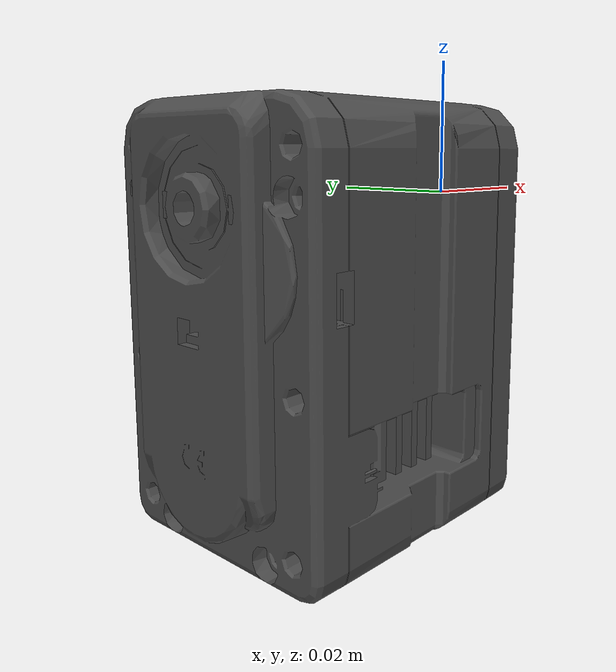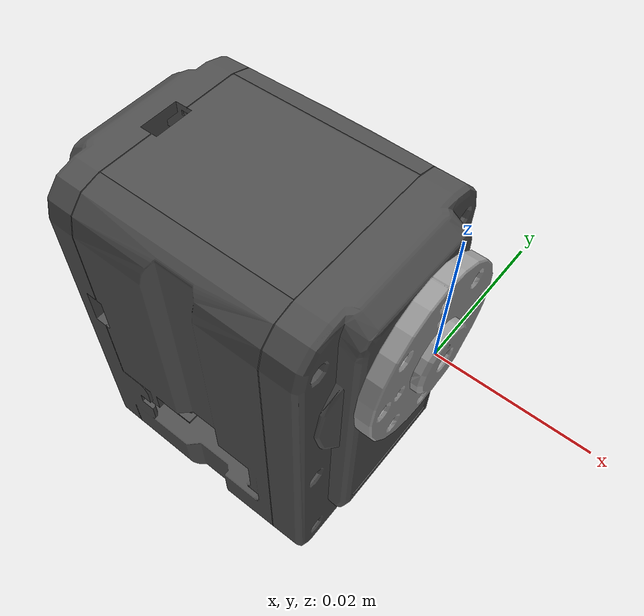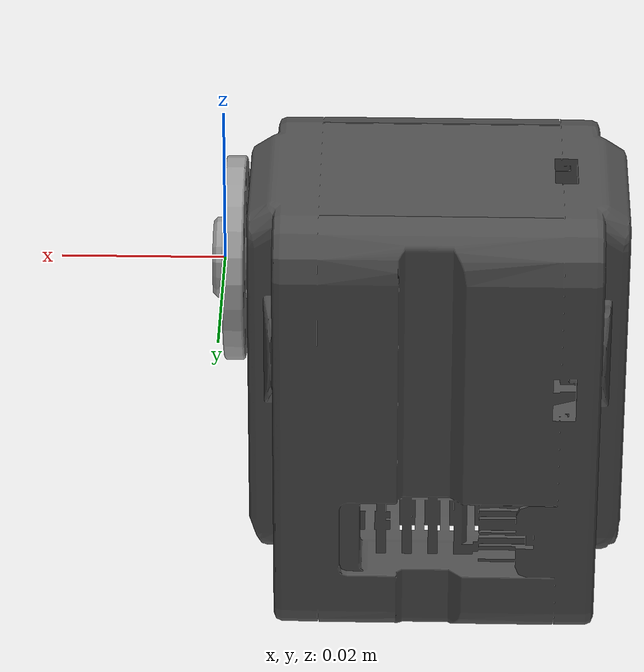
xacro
<?xml version="1.0"?>

<robot name="herkulex" xmlns:xacro="http://www.ros.org/wiki/xacro">
  <!-- Include all component files -->
  <xacro:include filename="$(find herkulex_description)/urdf/materials.urdf.xacro" />
  <!-- Define a number of dimensions using properties -->
  <xacro:property name="PI" value="3.1415926" />

  <!-- define a herkulex joint -->
  <link name="base"/>
  <joint name="fixed" type="fixed">
    <parent link="base"/>
    <child link="link1"/>
     <origin xyz="0 0 0" rpy="0 0 0"/>
  </joint>

  <link name="link1">
    <collision>
      <origin xyz="0 0 0" rpy="0 0 0"/>
      <geometry>
        <mesh filename="package://herkulex_description/meshes//0602-body.STL" scale="0.001 0.001 0.001"/>
      </geometry>
     	<material name="darkgrey"/>
    </collision>
    <visual>
      <origin xyz="0 0 0" rpy="0 0 0"/>
      <geometry>
        <mesh filename="package://herkulex_description/meshes//0602-body.STL" scale="0.001 0.001 0.001"/>
      </geometry>
      	<material name="darkgrey"/>
    </visual>
  </link>

  <joint name="joint1" type="revolute">
    <parent link="link1"/>
    <child link="horn1"/>
    <origin xyz="0 0 0" rpy="0 0 0"/>
    <axis xyz="1 0 0"/>
    <limit effort="30" lower="-2.617" upper="2.617" velocity="1.571"/>
  </joint>

  <link name="horn1">
    <collision>
      <origin xyz="0 0 0" rpy="0 0 0"/>
      <geometry>
        <mesh filename="package://herkulex_description/meshes//0602-horn.STL" scale="0.001 0.001 0.001"/>
      </geometry>
     	<material name="grey"/>
    </collision>
    <visual>
      <origin xyz="0 0 0" rpy="0 0 0"/>
      <geometry>
        <mesh filename="package://herkulex_description/meshes//0602-horn.STL" scale="0.001 0.001 0.001"/>
      </geometry>
      	<material name="grey"/>
    </visual>
  </link>

</robot>
